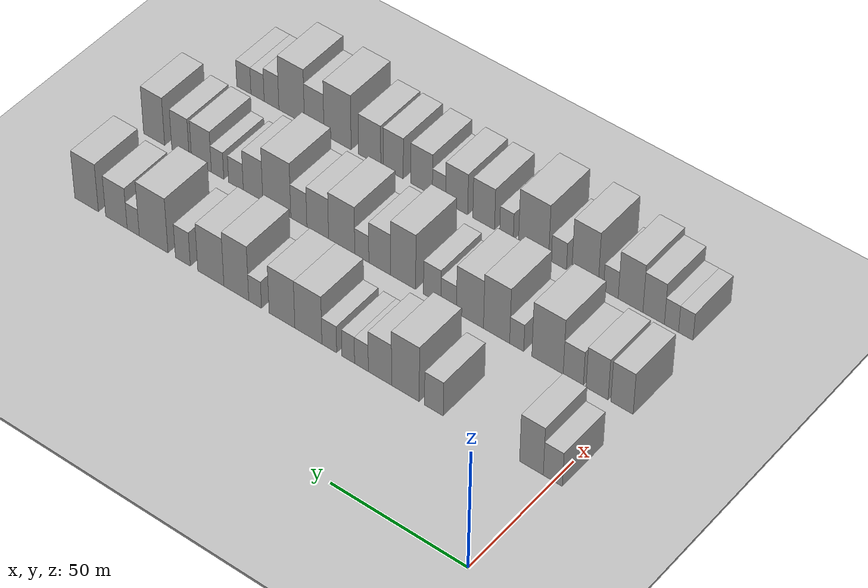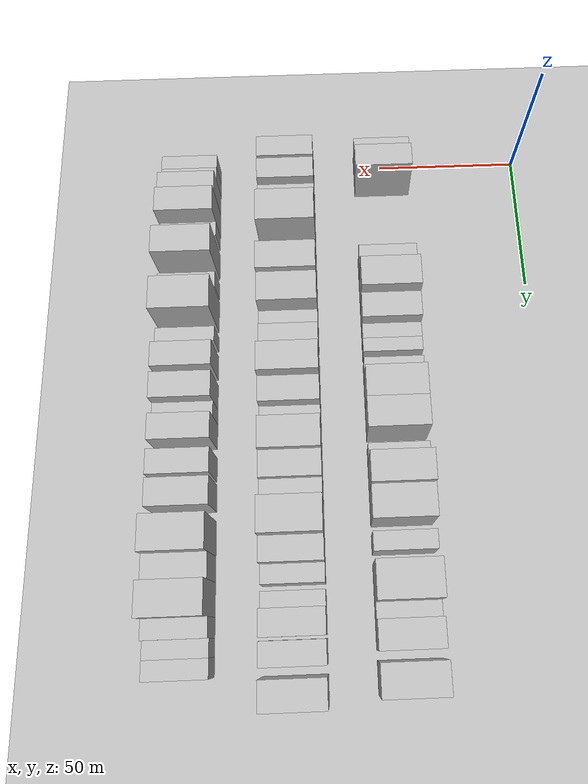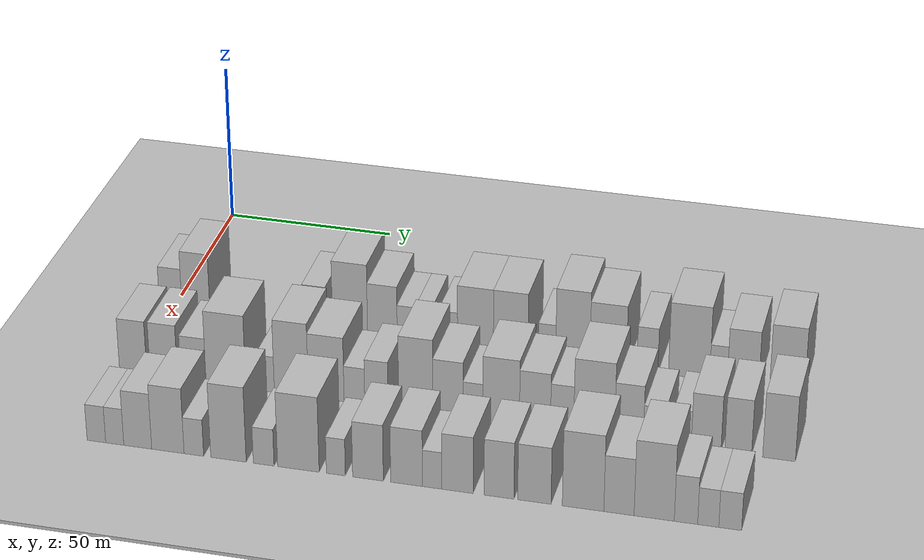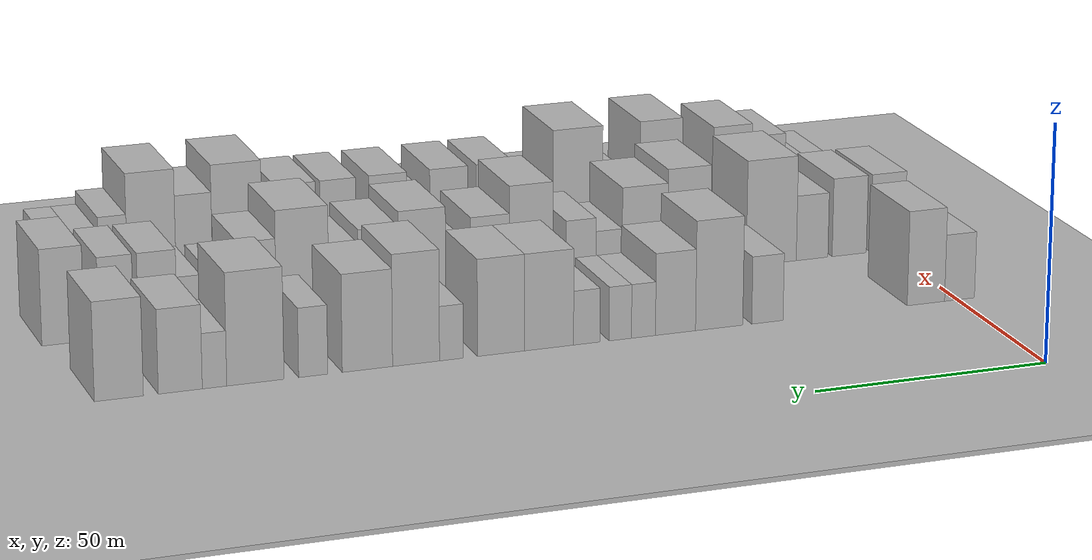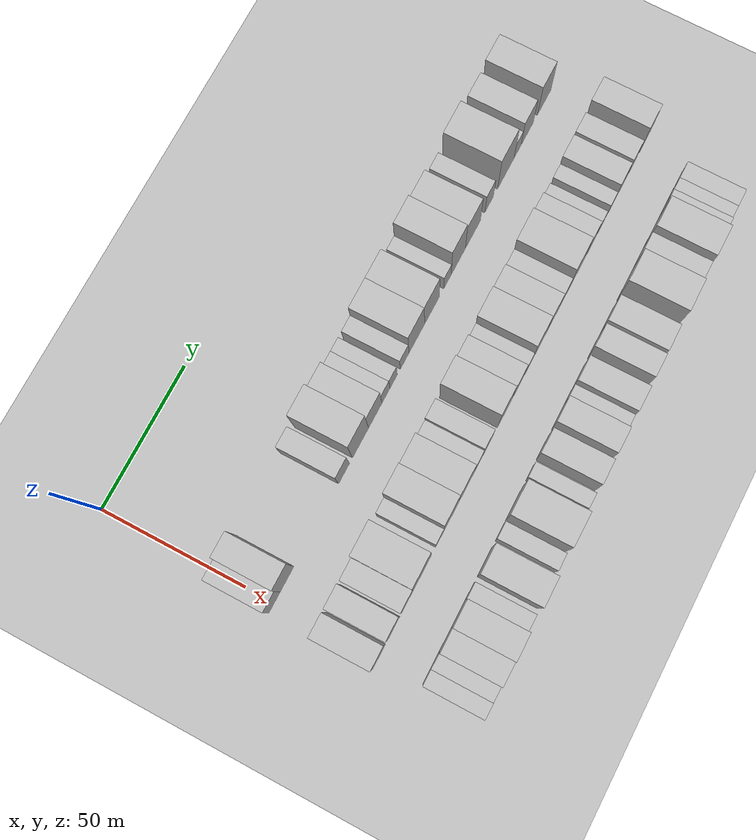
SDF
<sdf version="1.6">
 <world name="default">
  <include><name>ground_plane_1</name><uri>model://HANNAS_ground_plane</uri></include>
  <include>
   <name>ground_plane_2</name>
   <uri>model://HANNAS_ground_plane</uri>
   <pose>100 0 0  0 0 0</pose>
  </include>
  <model name="building_43">
   <static>1</static>
   <pose>50.0000 0.1509 0 0.000000 0.000000 0.000000</pose>
   <link name="link">
    <pose>0 0 7.50 0 0 0</pose>
    <collision name="collision"><geometry><box><size>20.0000 6.8520 15.0000</size></box></geometry></collision>
    <visual name="visual">
     <cast_shadows>0</cast_shadows>
     <geometry><box><size>20.0000 6.8520 15.0000</size></box></geometry>
     <material>
      <script>
       <uri>model://HANNAS_wall/materials/scripts</uri>
       <uri>model://HANNAS_wall/materials/textures</uri>
       <name>vrc/HANNAS_wall</name>
      </script>
     </material>
    </visual>
   </link>
  </model>
  <model name="building_44">
   <static>1</static>
   <pose>50.0000 7.8395 0 0.000000 0.000000 0.000000</pose>
   <link name="link">
    <pose>0 0 10.50 0 0 0</pose>
    <collision name="collision"><geometry><box><size>20.0000 8.5250 21.0000</size></box></geometry></collision>
    <visual name="visual">
     <cast_shadows>0</cast_shadows>
     <geometry><box><size>20.0000 8.5250 21.0000</size></box></geometry>
     <material>
      <script>
       <uri>model://HANNAS_wall/materials/scripts</uri>
       <uri>model://HANNAS_wall/materials/textures</uri>
       <name>vrc/HANNAS_wall</name>
      </script>
     </material>
    </visual>
   </link>
  </model>
  <model name="building_45">
   <static>1</static>
   <pose>50.0000 43.5296 0 0.000000 0.000000 0.000000</pose>
   <link name="link">
    <pose>0 0 7.50 0 0 0</pose>
    <collision name="collision"><geometry><box><size>20.0000 6.9517 15.0000</size></box></geometry></collision>
    <visual name="visual">
     <cast_shadows>0</cast_shadows>
     <geometry><box><size>20.0000 6.9517 15.0000</size></box></geometry>
     <material>
      <script>
       <uri>model://HANNAS_wall/materials/scripts</uri>
       <uri>model://HANNAS_wall/materials/textures</uri>
       <name>vrc/HANNAS_wall</name>
      </script>
     </material>
    </visual>
   </link>
  </model>
  <model name="building_46">
   <static>1</static>
   <pose>50.0000 54.2052 0 0.000000 0.000000 0.000000</pose>
   <link name="link">
    <pose>0 0 12.00 0 0 0</pose>
    <collision name="collision"><geometry><box><size>20.0000 10.3996 24.0000</size></box></geometry></collision>
    <visual name="visual">
     <cast_shadows>0</cast_shadows>
     <geometry><box><size>20.0000 10.3996 24.0000</size></box></geometry>
     <material>
      <script>
       <uri>model://HANNAS_wall/materials/scripts</uri>
       <uri>model://HANNAS_wall/materials/textures</uri>
       <name>vrc/HANNAS_wall</name>
      </script>
     </material>
    </visual>
   </link>
  </model>
  <model name="building_47">
   <static>1</static>
   <pose>50.0000 63.7907 0 0.000000 0.000000 0.000000</pose>
   <link name="link">
    <pose>0 0 9.00 0 0 0</pose>
    <collision name="collision"><geometry><box><size>20.0000 8.7714 18.0000</size></box></geometry></collision>
    <visual name="visual">
     <cast_shadows>0</cast_shadows>
     <geometry><box><size>20.0000 8.7714 18.0000</size></box></geometry>
     <material>
      <script>
       <uri>model://HANNAS_wall/materials/scripts</uri>
       <uri>model://HANNAS_wall/materials/textures</uri>
       <name>vrc/HANNAS_wall</name>
      </script>
     </material>
    </visual>
   </link>
  </model>
  <model name="building_48">
   <static>1</static>
   <pose>50.0000 70.7901 0 0.000000 0.000000 0.000000</pose>
   <link name="link">
    <pose>0 0 6.00 0 0 0</pose>
    <collision name="collision"><geometry><box><size>20.0000 5.2275 12.0000</size></box></geometry></collision>
    <visual name="visual">
     <cast_shadows>0</cast_shadows>
     <geometry><box><size>20.0000 5.2275 12.0000</size></box></geometry>
     <material>
      <script>
       <uri>model://HANNAS_wall/materials/scripts</uri>
       <uri>model://HANNAS_wall/materials/textures</uri>
       <name>vrc/HANNAS_wall</name>
      </script>
     </material>
    </visual>
   </link>
  </model>
  <model name="building_49">
   <static>1</static>
   <pose>50.0000 75.8190 0 0.000000 0.000000 0.000000</pose>
   <link name="link">
    <pose>0 0 6.00 0 0 0</pose>
    <collision name="collision"><geometry><box><size>20.0000 4.8302 12.0000</size></box></geometry></collision>
    <visual name="visual">
     <cast_shadows>0</cast_shadows>
     <geometry><box><size>20.0000 4.8302 12.0000</size></box></geometry>
     <material>
      <script>
       <uri>model://HANNAS_wall/materials/scripts</uri>
       <uri>model://HANNAS_wall/materials/textures</uri>
       <name>vrc/HANNAS_wall</name>
      </script>
     </material>
    </visual>
   </link>
  </model>
  <model name="building_50">
   <static>1</static>
   <pose>50.0000 83.0791 0 0.000000 0.000000 0.000000</pose>
   <link name="link">
    <pose>0 0 6.00 0 0 0</pose>
    <collision name="collision"><geometry><box><size>20.0000 5.6902 12.0000</size></box></geometry></collision>
    <visual name="visual">
     <cast_shadows>0</cast_shadows>
     <geometry><box><size>20.0000 5.6902 12.0000</size></box></geometry>
     <material>
      <script>
       <uri>model://HANNAS_wall/materials/scripts</uri>
       <uri>model://HANNAS_wall/materials/textures</uri>
       <name>vrc/HANNAS_wall</name>
      </script>
     </material>
    </visual>
   </link>
  </model>
  <model name="building_51">
   <static>1</static>
   <pose>50.0000 91.1580 0 0.000000 0.000000 0.000000</pose>
   <link name="link">
    <pose>0 0 10.50 0 0 0</pose>
    <collision name="collision"><geometry><box><size>20.0000 10.4676 21.0000</size></box></geometry></collision>
    <visual name="visual">
     <cast_shadows>0</cast_shadows>
     <geometry><box><size>20.0000 10.4676 21.0000</size></box></geometry>
     <material>
      <script>
       <uri>model://HANNAS_wall/materials/scripts</uri>
       <uri>model://HANNAS_wall/materials/textures</uri>
       <name>vrc/HANNAS_wall</name>
      </script>
     </material>
    </visual>
   </link>
  </model>
  <model name="building_52">
   <static>1</static>
   <pose>50.0000 101.4219 0 0.000000 0.000000 0.000000</pose>
   <link name="link">
    <pose>0 0 10.50 0 0 0</pose>
    <collision name="collision"><geometry><box><size>20.0000 10.0602 21.0000</size></box></geometry></collision>
    <visual name="visual">
     <cast_shadows>0</cast_shadows>
     <geometry><box><size>20.0000 10.0602 21.0000</size></box></geometry>
     <material>
      <script>
       <uri>model://HANNAS_wall/materials/scripts</uri>
       <uri>model://HANNAS_wall/materials/textures</uri>
       <name>vrc/HANNAS_wall</name>
      </script>
     </material>
    </visual>
   </link>
  </model>
  <model name="building_53">
   <static>1</static>
   <pose>50.0000 111.9595 0 0.000000 0.000000 0.000000</pose>
   <link name="link">
    <pose>0 0 6.00 0 0 0</pose>
    <collision name="collision"><geometry><box><size>20.0000 5.0150 12.0000</size></box></geometry></collision>
    <visual name="visual">
     <cast_shadows>0</cast_shadows>
     <geometry><box><size>20.0000 5.0150 12.0000</size></box></geometry>
     <material>
      <script>
       <uri>model://HANNAS_wall/materials/scripts</uri>
       <uri>model://HANNAS_wall/materials/textures</uri>
       <name>vrc/HANNAS_wall</name>
      </script>
     </material>
    </visual>
   </link>
  </model>
  <model name="building_54">
   <static>1</static>
   <pose>50.0000 119.3918 0 0.000000 0.000000 0.000000</pose>
   <link name="link">
    <pose>0 0 12.00 0 0 0</pose>
    <collision name="collision"><geometry><box><size>20.0000 9.8497 24.0000</size></box></geometry></collision>
    <visual name="visual">
     <cast_shadows>0</cast_shadows>
     <geometry><box><size>20.0000 9.8497 24.0000</size></box></geometry>
     <material>
      <script>
       <uri>model://HANNAS_wall/materials/scripts</uri>
       <uri>model://HANNAS_wall/materials/textures</uri>
       <name>vrc/HANNAS_wall</name>
      </script>
     </material>
    </visual>
   </link>
  </model>
  <model name="building_55">
   <static>1</static>
   <pose>50.0000 129.5492 0 0.000000 0.000000 0.000000</pose>
   <link name="link">
    <pose>0 0 10.50 0 0 0</pose>
    <collision name="collision"><geometry><box><size>20.0000 10.4650 21.0000</size></box></geometry></collision>
    <visual name="visual">
     <cast_shadows>0</cast_shadows>
     <geometry><box><size>20.0000 10.4650 21.0000</size></box></geometry>
     <material>
      <script>
       <uri>model://HANNAS_wall/materials/scripts</uri>
       <uri>model://HANNAS_wall/materials/textures</uri>
       <name>vrc/HANNAS_wall</name>
      </script>
     </material>
    </visual>
   </link>
  </model>
  <model name="building_56">
   <static>1</static>
   <pose>50.0000 140.7917 0 0.000000 0.000000 0.000000</pose>
   <link name="link">
    <pose>0 0 7.50 0 0 0</pose>
    <collision name="collision"><geometry><box><size>20.0000 6.0201 15.0000</size></box></geometry></collision>
    <visual name="visual">
     <cast_shadows>0</cast_shadows>
     <geometry><box><size>20.0000 6.0201 15.0000</size></box></geometry>
     <material>
      <script>
       <uri>model://HANNAS_wall/materials/scripts</uri>
       <uri>model://HANNAS_wall/materials/textures</uri>
       <name>vrc/HANNAS_wall</name>
      </script>
     </material>
    </visual>
   </link>
  </model>
  <model name="building_57">
   <static>1</static>
   <pose>50.0000 152.6573 0 0.000000 0.000000 0.000000</pose>
   <link name="link">
    <pose>0 0 12.00 0 0 0</pose>
    <collision name="collision"><geometry><box><size>20.0000 11.7112 24.0000</size></box></geometry></collision>
    <visual name="visual">
     <cast_shadows>0</cast_shadows>
     <geometry><box><size>20.0000 11.7112 24.0000</size></box></geometry>
     <material>
      <script>
       <uri>model://HANNAS_wall/materials/scripts</uri>
       <uri>model://HANNAS_wall/materials/textures</uri>
       <name>vrc/HANNAS_wall</name>
      </script>
     </material>
    </visual>
   </link>
  </model>
  <model name="building_58">
   <static>1</static>
   <pose>50.0000 161.0037 0 0.000000 0.000000 0.000000</pose>
   <link name="link">
    <pose>0 0 6.00 0 0 0</pose>
    <collision name="collision"><geometry><box><size>20.0000 4.9817 12.0000</size></box></geometry></collision>
    <visual name="visual">
     <cast_shadows>0</cast_shadows>
     <geometry><box><size>20.0000 4.9817 12.0000</size></box></geometry>
     <material>
      <script>
       <uri>model://HANNAS_wall/materials/scripts</uri>
       <uri>model://HANNAS_wall/materials/textures</uri>
       <name>vrc/HANNAS_wall</name>
      </script>
     </material>
    </visual>
   </link>
  </model>
  <model name="building_59">
   <static>1</static>
   <pose>50.0000 167.9402 0 0.000000 0.000000 0.000000</pose>
   <link name="link">
    <pose>0 0 9.00 0 0 0</pose>
    <collision name="collision"><geometry><box><size>20.0000 8.8914 18.0000</size></box></geometry></collision>
    <visual name="visual">
     <cast_shadows>0</cast_shadows>
     <geometry><box><size>20.0000 8.8914 18.0000</size></box></geometry>
     <material>
      <script>
       <uri>model://HANNAS_wall/materials/scripts</uri>
       <uri>model://HANNAS_wall/materials/textures</uri>
       <name>vrc/HANNAS_wall</name>
      </script>
     </material>
    </visual>
   </link>
  </model>
  <model name="building_60">
   <static>1</static>
   <pose>50.0000 180.3004 0 0.000000 0.000000 0.000000</pose>
   <link name="link">
    <pose>0 0 10.50 0 0 0</pose>
    <collision name="collision"><geometry><box><size>20.0000 9.8290 21.0000</size></box></geometry></collision>
    <visual name="visual">
     <cast_shadows>0</cast_shadows>
     <geometry><box><size>20.0000 9.8290 21.0000</size></box></geometry>
     <material>
      <script>
       <uri>model://HANNAS_wall/materials/scripts</uri>
       <uri>model://HANNAS_wall/materials/textures</uri>
       <name>vrc/HANNAS_wall</name>
      </script>
     </material>
    </visual>
   </link>
  </model>
  <model name="building_125">
   <static>1</static>
   <pose>85.0000 0.8133 0 0.000000 0.000000 0.000000</pose>
   <link name="link">
    <pose>0 0 9.00 0 0 0</pose>
    <collision name="collision"><geometry><box><size>20.0000 8.0490 18.0000</size></box></geometry></collision>
    <visual name="visual">
     <cast_shadows>0</cast_shadows>
     <geometry><box><size>20.0000 8.0490 18.0000</size></box></geometry>
     <material>
      <script>
       <uri>model://HANNAS_wall/materials/scripts</uri>
       <uri>model://HANNAS_wall/materials/textures</uri>
       <name>vrc/HANNAS_wall</name>
      </script>
     </material>
    </visual>
   </link>
  </model>
  <model name="building_126">
   <static>1</static>
   <pose>85.0000 9.8502 0 0.000000 0.000000 0.000000</pose>
   <link name="link">
    <pose>0 0 9.00 0 0 0</pose>
    <collision name="collision"><geometry><box><size>20.0000 8.0247 18.0000</size></box></geometry></collision>
    <visual name="visual">
     <cast_shadows>0</cast_shadows>
     <geometry><box><size>20.0000 8.0247 18.0000</size></box></geometry>
     <material>
      <script>
       <uri>model://HANNAS_wall/materials/scripts</uri>
       <uri>model://HANNAS_wall/materials/textures</uri>
       <name>vrc/HANNAS_wall</name>
      </script>
     </material>
    </visual>
   </link>
  </model>
  <model name="building_127">
   <static>1</static>
   <pose>85.0000 18.5501 0 0.000000 0.000000 0.000000</pose>
   <link name="link">
    <pose>0 0 7.50 0 0 0</pose>
    <collision name="collision"><geometry><box><size>20.0000 7.3752 15.0000</size></box></geometry></collision>
    <visual name="visual">
     <cast_shadows>0</cast_shadows>
     <geometry><box><size>20.0000 7.3752 15.0000</size></box></geometry>
     <material>
      <script>
       <uri>model://HANNAS_wall/materials/scripts</uri>
       <uri>model://HANNAS_wall/materials/textures</uri>
       <name>vrc/HANNAS_wall</name>
      </script>
     </material>
    </visual>
   </link>
  </model>
  <model name="building_128">
   <static>1</static>
   <pose>85.0000 28.0394 0 0.000000 0.000000 0.000000</pose>
   <link name="link">
    <pose>0 0 12.00 0 0 0</pose>
    <collision name="collision"><geometry><box><size>20.0000 11.6034 24.0000</size></box></geometry></collision>
    <visual name="visual">
     <cast_shadows>0</cast_shadows>
     <geometry><box><size>20.0000 11.6034 24.0000</size></box></geometry>
     <material>
      <script>
       <uri>model://HANNAS_wall/materials/scripts</uri>
       <uri>model://HANNAS_wall/materials/textures</uri>
       <name>vrc/HANNAS_wall</name>
      </script>
     </material>
    </visual>
   </link>
  </model>
  <model name="building_129">
   <static>1</static>
   <pose>85.0000 39.4799 0 0.000000 0.000000 0.000000</pose>
   <link name="link">
    <pose>0 0 6.00 0 0 0</pose>
    <collision name="collision"><geometry><box><size>20.0000 5.2776 12.0000</size></box></geometry></collision>
    <visual name="visual">
     <cast_shadows>0</cast_shadows>
     <geometry><box><size>20.0000 5.2776 12.0000</size></box></geometry>
     <material>
      <script>
       <uri>model://HANNAS_wall/materials/scripts</uri>
       <uri>model://HANNAS_wall/materials/textures</uri>
       <name>vrc/HANNAS_wall</name>
      </script>
     </material>
    </visual>
   </link>
  </model>
  <model name="building_130">
   <static>1</static>
   <pose>85.0000 47.0305 0 0.000000 0.000000 0.000000</pose>
   <link name="link">
    <pose>0 0 12.00 0 0 0</pose>
    <collision name="collision"><geometry><box><size>20.0000 9.8235 24.0000</size></box></geometry></collision>
    <visual name="visual">
     <cast_shadows>0</cast_shadows>
     <geometry><box><size>20.0000 9.8235 24.0000</size></box></geometry>
     <material>
      <script>
       <uri>model://HANNAS_wall/materials/scripts</uri>
       <uri>model://HANNAS_wall/materials/textures</uri>
       <name>vrc/HANNAS_wall</name>
      </script>
     </material>
    </visual>
   </link>
  </model>
  <model name="building_131">
   <static>1</static>
   <pose>85.0000 57.0818 0 0.000000 0.000000 0.000000</pose>
   <link name="link">
    <pose>0 0 10.50 0 0 0</pose>
    <collision name="collision"><geometry><box><size>20.0000 10.2791 21.0000</size></box></geometry></collision>
    <visual name="visual">
     <cast_shadows>0</cast_shadows>
     <geometry><box><size>20.0000 10.2791 21.0000</size></box></geometry>
     <material>
      <script>
       <uri>model://HANNAS_wall/materials/scripts</uri>
       <uri>model://HANNAS_wall/materials/textures</uri>
       <name>vrc/HANNAS_wall</name>
      </script>
     </material>
    </visual>
   </link>
  </model>
  <model name="building_132">
   <static>1</static>
   <pose>85.0000 65.1727 0 0.000000 0.000000 0.000000</pose>
   <link name="link">
    <pose>0 0 6.00 0 0 0</pose>
    <collision name="collision"><geometry><box><size>20.0000 5.9028 12.0000</size></box></geometry></collision>
    <visual name="visual">
     <cast_shadows>0</cast_shadows>
     <geometry><box><size>20.0000 5.9028 12.0000</size></box></geometry>
     <material>
      <script>
       <uri>model://HANNAS_wall/materials/scripts</uri>
       <uri>model://HANNAS_wall/materials/textures</uri>
       <name>vrc/HANNAS_wall</name>
      </script>
     </material>
    </visual>
   </link>
  </model>
  <model name="building_133">
   <static>1</static>
   <pose>85.0000 71.4631 0 0.000000 0.000000 0.000000</pose>
   <link name="link">
    <pose>0 0 7.50 0 0 0</pose>
    <collision name="collision"><geometry><box><size>20.0000 6.6780 15.0000</size></box></geometry></collision>
    <visual name="visual">
     <cast_shadows>0</cast_shadows>
     <geometry><box><size>20.0000 6.6780 15.0000</size></box></geometry>
     <material>
      <script>
       <uri>model://HANNAS_wall/materials/scripts</uri>
       <uri>model://HANNAS_wall/materials/textures</uri>
       <name>vrc/HANNAS_wall</name>
      </script>
     </material>
    </visual>
   </link>
  </model>
  <model name="building_134">
   <static>1</static>
   <pose>85.0000 82.6413 0 0.000000 0.000000 0.000000</pose>
   <link name="link">
    <pose>0 0 12.00 0 0 0</pose>
    <collision name="collision"><geometry><box><size>20.0000 9.6784 24.0000</size></box></geometry></collision>
    <visual name="visual">
     <cast_shadows>0</cast_shadows>
     <geometry><box><size>20.0000 9.6784 24.0000</size></box></geometry>
     <material>
      <script>
       <uri>model://HANNAS_wall/materials/scripts</uri>
       <uri>model://HANNAS_wall/materials/textures</uri>
       <name>vrc/HANNAS_wall</name>
      </script>
     </material>
    </visual>
   </link>
  </model>
  <model name="building_135">
   <static>1</static>
   <pose>85.0000 91.7358 0 0.000000 0.000000 0.000000</pose>
   <link name="link">
    <pose>0 0 9.00 0 0 0</pose>
    <collision name="collision"><geometry><box><size>20.0000 8.5106 18.0000</size></box></geometry></collision>
    <visual name="visual">
     <cast_shadows>0</cast_shadows>
     <geometry><box><size>20.0000 8.5106 18.0000</size></box></geometry>
     <material>
      <script>
       <uri>model://HANNAS_wall/materials/scripts</uri>
       <uri>model://HANNAS_wall/materials/textures</uri>
       <name>vrc/HANNAS_wall</name>
      </script>
     </material>
    </visual>
   </link>
  </model>
  <model name="building_136">
   <static>1</static>
   <pose>85.0000 98.7566 0 0.000000 0.000000 0.000000</pose>
   <link name="link">
    <pose>0 0 6.00 0 0 0</pose>
    <collision name="collision"><geometry><box><size>20.0000 5.5311 12.0000</size></box></geometry></collision>
    <visual name="visual">
     <cast_shadows>0</cast_shadows>
     <geometry><box><size>20.0000 5.5311 12.0000</size></box></geometry>
     <material>
      <script>
       <uri>model://HANNAS_wall/materials/scripts</uri>
       <uri>model://HANNAS_wall/materials/textures</uri>
       <name>vrc/HANNAS_wall</name>
      </script>
     </material>
    </visual>
   </link>
  </model>
  <model name="building_137">
   <static>1</static>
   <pose>85.0000 106.6880 0 0.000000 0.000000 0.000000</pose>
   <link name="link">
    <pose>0 0 10.50 0 0 0</pose>
    <collision name="collision"><geometry><box><size>20.0000 10.3317 21.0000</size></box></geometry></collision>
    <visual name="visual">
     <cast_shadows>0</cast_shadows>
     <geometry><box><size>20.0000 10.3317 21.0000</size></box></geometry>
     <material>
      <script>
       <uri>model://HANNAS_wall/materials/scripts</uri>
       <uri>model://HANNAS_wall/materials/textures</uri>
       <name>vrc/HANNAS_wall</name>
      </script>
     </material>
    </visual>
   </link>
  </model>
  <model name="building_138">
   <static>1</static>
   <pose>85.0000 116.1790 0 0.000000 0.000000 0.000000</pose>
   <link name="link">
    <pose>0 0 9.00 0 0 0</pose>
    <collision name="collision"><geometry><box><size>20.0000 8.6504 18.0000</size></box></geometry></collision>
    <visual name="visual">
     <cast_shadows>0</cast_shadows>
     <geometry><box><size>20.0000 8.6504 18.0000</size></box></geometry>
     <material>
      <script>
       <uri>model://HANNAS_wall/materials/scripts</uri>
       <uri>model://HANNAS_wall/materials/textures</uri>
       <name>vrc/HANNAS_wall</name>
      </script>
     </material>
    </visual>
   </link>
  </model>
  <model name="building_139">
   <static>1</static>
   <pose>85.0000 123.7134 0 0.000000 0.000000 0.000000</pose>
   <link name="link">
    <pose>0 0 7.50 0 0 0</pose>
    <collision name="collision"><geometry><box><size>20.0000 6.4184 15.0000</size></box></geometry></collision>
    <visual name="visual">
     <cast_shadows>0</cast_shadows>
     <geometry><box><size>20.0000 6.4184 15.0000</size></box></geometry>
     <material>
      <script>
       <uri>model://HANNAS_wall/materials/scripts</uri>
       <uri>model://HANNAS_wall/materials/textures</uri>
       <name>vrc/HANNAS_wall</name>
      </script>
     </material>
    </visual>
   </link>
  </model>
  <model name="building_140">
   <static>1</static>
   <pose>85.0000 132.5727 0 0.000000 0.000000 0.000000</pose>
   <link name="link">
    <pose>0 0 12.00 0 0 0</pose>
    <collision name="collision"><geometry><box><size>20.0000 11.3002 24.0000</size></box></geometry></collision>
    <visual name="visual">
     <cast_shadows>0</cast_shadows>
     <geometry><box><size>20.0000 11.3002 24.0000</size></box></geometry>
     <material>
      <script>
       <uri>model://HANNAS_wall/materials/scripts</uri>
       <uri>model://HANNAS_wall/materials/textures</uri>
       <name>vrc/HANNAS_wall</name>
      </script>
     </material>
    </visual>
   </link>
  </model>
  <model name="building_141">
   <static>1</static>
   <pose>85.0000 142.1951 0 0.000000 0.000000 0.000000</pose>
   <link name="link">
    <pose>0 0 9.00 0 0 0</pose>
    <collision name="collision"><geometry><box><size>20.0000 7.9446 18.0000</size></box></geometry></collision>
    <visual name="visual">
     <cast_shadows>0</cast_shadows>
     <geometry><box><size>20.0000 7.9446 18.0000</size></box></geometry>
     <material>
      <script>
       <uri>model://HANNAS_wall/materials/scripts</uri>
       <uri>model://HANNAS_wall/materials/textures</uri>
       <name>vrc/HANNAS_wall</name>
      </script>
     </material>
    </visual>
   </link>
  </model>
  <model name="building_142">
   <static>1</static>
   <pose>85.0000 149.1598 0 0.000000 0.000000 0.000000</pose>
   <link name="link">
    <pose>0 0 6.00 0 0 0</pose>
    <collision name="collision"><geometry><box><size>20.0000 5.9849 12.0000</size></box></geometry></collision>
    <visual name="visual">
     <cast_shadows>0</cast_shadows>
     <geometry><box><size>20.0000 5.9849 12.0000</size></box></geometry>
     <material>
      <script>
       <uri>model://HANNAS_wall/materials/scripts</uri>
       <uri>model://HANNAS_wall/materials/textures</uri>
       <name>vrc/HANNAS_wall</name>
      </script>
     </material>
    </visual>
   </link>
  </model>
  <model name="building_143">
   <static>1</static>
   <pose>85.0000 156.7117 0 0.000000 0.000000 0.000000</pose>
   <link name="link">
    <pose>0 0 6.00 0 0 0</pose>
    <collision name="collision"><geometry><box><size>20.0000 5.1188 12.0000</size></box></geometry></collision>
    <visual name="visual">
     <cast_shadows>0</cast_shadows>
     <geometry><box><size>20.0000 5.1188 12.0000</size></box></geometry>
     <material>
      <script>
       <uri>model://HANNAS_wall/materials/scripts</uri>
       <uri>model://HANNAS_wall/materials/textures</uri>
       <name>vrc/HANNAS_wall</name>
      </script>
     </material>
    </visual>
   </link>
  </model>
  <model name="building_144">
   <static>1</static>
   <pose>85.0000 163.3354 0 0.000000 0.000000 0.000000</pose>
   <link name="link">
    <pose>0 0 9.00 0 0 0</pose>
    <collision name="collision"><geometry><box><size>20.0000 8.1286 18.0000</size></box></geometry></collision>
    <visual name="visual">
     <cast_shadows>0</cast_shadows>
     <geometry><box><size>20.0000 8.1286 18.0000</size></box></geometry>
     <material>
      <script>
       <uri>model://HANNAS_wall/materials/scripts</uri>
       <uri>model://HANNAS_wall/materials/textures</uri>
       <name>vrc/HANNAS_wall</name>
      </script>
     </material>
    </visual>
   </link>
  </model>
  <model name="building_145">
   <static>1</static>
   <pose>85.0000 172.0399 0 0.000000 0.000000 0.000000</pose>
   <link name="link">
    <pose>0 0 9.00 0 0 0</pose>
    <collision name="collision"><geometry><box><size>20.0000 7.2806 18.0000</size></box></geometry></collision>
    <visual name="visual">
     <cast_shadows>0</cast_shadows>
     <geometry><box><size>20.0000 7.2806 18.0000</size></box></geometry>
     <material>
      <script>
       <uri>model://HANNAS_wall/materials/scripts</uri>
       <uri>model://HANNAS_wall/materials/textures</uri>
       <name>vrc/HANNAS_wall</name>
      </script>
     </material>
    </visual>
   </link>
  </model>
  <model name="building_146">
   <static>1</static>
   <pose>85.0000 183.0914 0 0.000000 0.000000 0.000000</pose>
   <link name="link">
    <pose>0 0 10.50 0 0 0</pose>
    <collision name="collision"><geometry><box><size>20.0000 8.8224 21.0000</size></box></geometry></collision>
    <visual name="visual">
     <cast_shadows>0</cast_shadows>
     <geometry><box><size>20.0000 8.8224 21.0000</size></box></geometry>
     <material>
      <script>
       <uri>model://HANNAS_wall/materials/scripts</uri>
       <uri>model://HANNAS_wall/materials/textures</uri>
       <name>vrc/HANNAS_wall</name>
      </script>
     </material>
    </visual>
   </link>
  </model>
  <model name="building_207">
   <static>1</static>
   <pose>120.0000 2.4926 0 0.000000 0.000000 0.000000</pose>
   <link name="link">
    <pose>0 0 6.00 0 0 0</pose>
    <collision name="collision"><geometry><box><size>20.0000 5.2878 12.0000</size></box></geometry></collision>
    <visual name="visual">
     <cast_shadows>0</cast_shadows>
     <geometry><box><size>20.0000 5.2878 12.0000</size></box></geometry>
     <material>
      <script>
       <uri>model://HANNAS_wall/materials/scripts</uri>
       <uri>model://HANNAS_wall/materials/textures</uri>
       <name>vrc/HANNAS_wall</name>
      </script>
     </material>
    </visual>
   </link>
  </model>
  <model name="building_208">
   <static>1</static>
   <pose>120.0000 7.7155 0 0.000000 0.000000 0.000000</pose>
   <link name="link">
    <pose>0 0 6.00 0 0 0</pose>
    <collision name="collision"><geometry><box><size>20.0000 5.1580 12.0000</size></box></geometry></collision>
    <visual name="visual">
     <cast_shadows>0</cast_shadows>
     <geometry><box><size>20.0000 5.1580 12.0000</size></box></geometry>
     <material>
      <script>
       <uri>model://HANNAS_wall/materials/scripts</uri>
       <uri>model://HANNAS_wall/materials/textures</uri>
       <name>vrc/HANNAS_wall</name>
      </script>
     </material>
    </visual>
   </link>
  </model>
  <model name="building_209">
   <static>1</static>
   <pose>120.0000 14.2605 0 0.000000 0.000000 0.000000</pose>
   <link name="link">
    <pose>0 0 9.00 0 0 0</pose>
    <collision name="collision"><geometry><box><size>20.0000 7.9321 18.0000</size></box></geometry></collision>
    <visual name="visual">
     <cast_shadows>0</cast_shadows>
     <geometry><box><size>20.0000 7.9321 18.0000</size></box></geometry>
     <material>
      <script>
       <uri>model://HANNAS_wall/materials/scripts</uri>
       <uri>model://HANNAS_wall/materials/textures</uri>
       <name>vrc/HANNAS_wall</name>
      </script>
     </material>
    </visual>
   </link>
  </model>
  <model name="building_210">
   <static>1</static>
   <pose>120.0000 22.8057 0 0.000000 0.000000 0.000000</pose>
   <link name="link">
    <pose>0 0 10.50 0 0 0</pose>
    <collision name="collision"><geometry><box><size>20.0000 9.1583 21.0000</size></box></geometry></collision>
    <visual name="visual">
     <cast_shadows>0</cast_shadows>
     <geometry><box><size>20.0000 9.1583 21.0000</size></box></geometry>
     <material>
      <script>
       <uri>model://HANNAS_wall/materials/scripts</uri>
       <uri>model://HANNAS_wall/materials/textures</uri>
       <name>vrc/HANNAS_wall</name>
      </script>
     </material>
    </visual>
   </link>
  </model>
  <model name="building_211">
   <static>1</static>
   <pose>120.0000 30.1378 0 0.000000 0.000000 0.000000</pose>
   <link name="link">
    <pose>0 0 6.00 0 0 0</pose>
    <collision name="collision"><geometry><box><size>20.0000 5.5057 12.0000</size></box></geometry></collision>
    <visual name="visual">
     <cast_shadows>0</cast_shadows>
     <geometry><box><size>20.0000 5.5057 12.0000</size></box></geometry>
     <material>
      <script>
       <uri>model://HANNAS_wall/materials/scripts</uri>
       <uri>model://HANNAS_wall/materials/textures</uri>
       <name>vrc/HANNAS_wall</name>
      </script>
     </material>
    </visual>
   </link>
  </model>
  <model name="building_212">
   <static>1</static>
   <pose>120.0000 39.8535 0 0.000000 0.000000 0.000000</pose>
   <link name="link">
    <pose>0 0 12.00 0 0 0</pose>
    <collision name="collision"><geometry><box><size>20.0000 9.9258 24.0000</size></box></geometry></collision>
    <visual name="visual">
     <cast_shadows>0</cast_shadows>
     <geometry><box><size>20.0000 9.9258 24.0000</size></box></geometry>
     <material>
      <script>
       <uri>model://HANNAS_wall/materials/scripts</uri>
       <uri>model://HANNAS_wall/materials/textures</uri>
       <name>vrc/HANNAS_wall</name>
      </script>
     </material>
    </visual>
   </link>
  </model>
  <model name="building_213">
   <static>1</static>
   <pose>120.0000 49.7086 0 0.000000 0.000000 0.000000</pose>
   <link name="link">
    <pose>0 0 6.00 0 0 0</pose>
    <collision name="collision"><geometry><box><size>20.0000 5.7843 12.0000</size></box></geometry></collision>
    <visual name="visual">
     <cast_shadows>0</cast_shadows>
     <geometry><box><size>20.0000 5.7843 12.0000</size></box></geometry>
     <material>
      <script>
       <uri>model://HANNAS_wall/materials/scripts</uri>
       <uri>model://HANNAS_wall/materials/textures</uri>
       <name>vrc/HANNAS_wall</name>
      </script>
     </material>
    </visual>
   </link>
  </model>
  <model name="building_214">
   <static>1</static>
   <pose>120.0000 59.3569 0 0.000000 0.000000 0.000000</pose>
   <link name="link">
    <pose>0 0 12.00 0 0 0</pose>
    <collision name="collision"><geometry><box><size>20.0000 11.5123 24.0000</size></box></geometry></collision>
    <visual name="visual">
     <cast_shadows>0</cast_shadows>
     <geometry><box><size>20.0000 11.5123 24.0000</size></box></geometry>
     <material>
      <script>
       <uri>model://HANNAS_wall/materials/scripts</uri>
       <uri>model://HANNAS_wall/materials/textures</uri>
       <name>vrc/HANNAS_wall</name>
      </script>
     </material>
    </visual>
   </link>
  </model>
  <model name="building_215">
   <static>1</static>
   <pose>120.0000 69.7327 0 0.000000 0.000000 0.000000</pose>
   <link name="link">
    <pose>0 0 6.00 0 0 0</pose>
    <collision name="collision"><geometry><box><size>20.0000 5.2394 12.0000</size></box></geometry></collision>
    <visual name="visual">
     <cast_shadows>0</cast_shadows>
     <geometry><box><size>20.0000 5.2394 12.0000</size></box></geometry>
     <material>
      <script>
       <uri>model://HANNAS_wall/materials/scripts</uri>
       <uri>model://HANNAS_wall/materials/textures</uri>
       <name>vrc/HANNAS_wall</name>
      </script>
     </material>
    </visual>
   </link>
  </model>
  <model name="building_216">
   <static>1</static>
   <pose>120.0000 78.5703 0 0.000000 0.000000 0.000000</pose>
   <link name="link">
    <pose>0 0 9.00 0 0 0</pose>
    <collision name="collision"><geometry><box><size>20.0000 8.4357 18.0000</size></box></geometry></collision>
    <visual name="visual">
     <cast_shadows>0</cast_shadows>
     <geometry><box><size>20.0000 8.4357 18.0000</size></box></geometry>
     <material>
      <script>
       <uri>model://HANNAS_wall/materials/scripts</uri>
       <uri>model://HANNAS_wall/materials/textures</uri>
       <name>vrc/HANNAS_wall</name>
      </script>
     </material>
    </visual>
   </link>
  </model>
  <model name="building_217">
   <static>1</static>
   <pose>120.0000 89.1276 0 0.000000 0.000000 0.000000</pose>
   <link name="link">
    <pose>0 0 9.00 0 0 0</pose>
    <collision name="collision"><geometry><box><size>20.0000 8.6790 18.0000</size></box></geometry></collision>
    <visual name="visual">
     <cast_shadows>0</cast_shadows>
     <geometry><box><size>20.0000 8.6790 18.0000</size></box></geometry>
     <material>
      <script>
       <uri>model://HANNAS_wall/materials/scripts</uri>
       <uri>model://HANNAS_wall/materials/textures</uri>
       <name>vrc/HANNAS_wall</name>
      </script>
     </material>
    </visual>
   </link>
  </model>
  <model name="building_218">
   <static>1</static>
   <pose>120.0000 96.0689 0 0.000000 0.000000 0.000000</pose>
   <link name="link">
    <pose>0 0 6.00 0 0 0</pose>
    <collision name="collision"><geometry><box><size>20.0000 5.2034 12.0000</size></box></geometry></collision>
    <visual name="visual">
     <cast_shadows>0</cast_shadows>
     <geometry><box><size>20.0000 5.2034 12.0000</size></box></geometry>
     <material>
      <script>
       <uri>model://HANNAS_wall/materials/scripts</uri>
       <uri>model://HANNAS_wall/materials/textures</uri>
       <name>vrc/HANNAS_wall</name>
      </script>
     </material>
    </visual>
   </link>
  </model>
  <model name="building_219">
   <static>1</static>
   <pose>120.0000 102.9415 0 0.000000 0.000000 0.000000</pose>
   <link name="link">
    <pose>0 0 9.00 0 0 0</pose>
    <collision name="collision"><geometry><box><size>20.0000 8.5418 18.0000</size></box></geometry></collision>
    <visual name="visual">
     <cast_shadows>0</cast_shadows>
     <geometry><box><size>20.0000 8.5418 18.0000</size></box></geometry>
     <material>
      <script>
       <uri>model://HANNAS_wall/materials/scripts</uri>
       <uri>model://HANNAS_wall/materials/textures</uri>
       <name>vrc/HANNAS_wall</name>
      </script>
     </material>
    </visual>
   </link>
  </model>
  <model name="building_220">
   <static>1</static>
   <pose>120.0000 114.2229 0 0.000000 0.000000 0.000000</pose>
   <link name="link">
    <pose>0 0 9.00 0 0 0</pose>
    <collision name="collision"><geometry><box><size>20.0000 8.0211 18.0000</size></box></geometry></collision>
    <visual name="visual">
     <cast_shadows>0</cast_shadows>
     <geometry><box><size>20.0000 8.0211 18.0000</size></box></geometry>
     <material>
      <script>
       <uri>model://HANNAS_wall/materials/scripts</uri>
       <uri>model://HANNAS_wall/materials/textures</uri>
       <name>vrc/HANNAS_wall</name>
      </script>
     </material>
    </visual>
   </link>
  </model>
  <model name="building_221">
   <static>1</static>
   <pose>120.0000 123.7065 0 0.000000 0.000000 0.000000</pose>
   <link name="link">
    <pose>0 0 9.00 0 0 0</pose>
    <collision name="collision"><geometry><box><size>20.0000 8.9461 18.0000</size></box></geometry></collision>
    <visual name="visual">
     <cast_shadows>0</cast_shadows>
     <geometry><box><size>20.0000 8.9461 18.0000</size></box></geometry>
     <material>
      <script>
       <uri>model://HANNAS_wall/materials/scripts</uri>
       <uri>model://HANNAS_wall/materials/textures</uri>
       <name>vrc/HANNAS_wall</name>
      </script>
     </material>
    </visual>
   </link>
  </model>
  <model name="building_222">
   <static>1</static>
   <pose>120.0000 136.7071 0 0.000000 0.000000 0.000000</pose>
   <link name="link">
    <pose>0 0 12.00 0 0 0</pose>
    <collision name="collision"><geometry><box><size>20.0000 11.0551 24.0000</size></box></geometry></collision>
    <visual name="visual">
     <cast_shadows>0</cast_shadows>
     <geometry><box><size>20.0000 11.0551 24.0000</size></box></geometry>
     <material>
      <script>
       <uri>model://HANNAS_wall/materials/scripts</uri>
       <uri>model://HANNAS_wall/materials/textures</uri>
       <name>vrc/HANNAS_wall</name>
      </script>
     </material>
    </visual>
   </link>
  </model>
  <model name="building_223">
   <static>1</static>
   <pose>120.0000 146.2431 0 0.000000 0.000000 0.000000</pose>
   <link name="link">
    <pose>0 0 9.00 0 0 0</pose>
    <collision name="collision"><geometry><box><size>20.0000 8.0170 18.0000</size></box></geometry></collision>
    <visual name="visual">
     <cast_shadows>0</cast_shadows>
     <geometry><box><size>20.0000 8.0170 18.0000</size></box></geometry>
     <material>
      <script>
       <uri>model://HANNAS_wall/materials/scripts</uri>
       <uri>model://HANNAS_wall/materials/textures</uri>
       <name>vrc/HANNAS_wall</name>
      </script>
     </material>
    </visual>
   </link>
  </model>
  <model name="building_224">
   <static>1</static>
   <pose>120.0000 155.5465 0 0.000000 0.000000 0.000000</pose>
   <link name="link">
    <pose>0 0 12.00 0 0 0</pose>
    <collision name="collision"><geometry><box><size>20.0000 10.5896 24.0000</size></box></geometry></collision>
    <visual name="visual">
     <cast_shadows>0</cast_shadows>
     <geometry><box><size>20.0000 10.5896 24.0000</size></box></geometry>
     <material>
      <script>
       <uri>model://HANNAS_wall/materials/scripts</uri>
       <uri>model://HANNAS_wall/materials/textures</uri>
       <name>vrc/HANNAS_wall</name>
      </script>
     </material>
    </visual>
   </link>
  </model>
  <model name="building_225">
   <static>1</static>
   <pose>120.0000 163.9073 0 0.000000 0.000000 0.000000</pose>
   <link name="link">
    <pose>0 0 7.50 0 0 0</pose>
    <collision name="collision"><geometry><box><size>20.0000 6.1320 15.0000</size></box></geometry></collision>
    <visual name="visual">
     <cast_shadows>0</cast_shadows>
     <geometry><box><size>20.0000 6.1320 15.0000</size></box></geometry>
     <material>
      <script>
       <uri>model://HANNAS_wall/materials/scripts</uri>
       <uri>model://HANNAS_wall/materials/textures</uri>
       <name>vrc/HANNAS_wall</name>
      </script>
     </material>
    </visual>
   </link>
  </model>
  <model name="building_226">
   <static>1</static>
   <pose>120.0000 169.7407 0 0.000000 0.000000 0.000000</pose>
   <link name="link">
    <pose>0 0 6.00 0 0 0</pose>
    <collision name="collision"><geometry><box><size>20.0000 5.5348 12.0000</size></box></geometry></collision>
    <visual name="visual">
     <cast_shadows>0</cast_shadows>
     <geometry><box><size>20.0000 5.5348 12.0000</size></box></geometry>
     <material>
      <script>
       <uri>model://HANNAS_wall/materials/scripts</uri>
       <uri>model://HANNAS_wall/materials/textures</uri>
       <name>vrc/HANNAS_wall</name>
      </script>
     </material>
    </visual>
   </link>
  </model>
  <model name="building_227">
   <static>1</static>
   <pose>120.0000 175.4823 0 0.000000 0.000000 0.000000</pose>
   <link name="link">
    <pose>0 0 6.00 0 0 0</pose>
    <collision name="collision"><geometry><box><size>20.0000 5.9484 12.0000</size></box></geometry></collision>
    <visual name="visual">
     <cast_shadows>0</cast_shadows>
     <geometry><box><size>20.0000 5.9484 12.0000</size></box></geometry>
     <material>
      <script>
       <uri>model://HANNAS_wall/materials/scripts</uri>
       <uri>model://HANNAS_wall/materials/textures</uri>
       <name>vrc/HANNAS_wall</name>
      </script>
     </material>
    </visual>
   </link>
  </model>
 </world>
</sdf>
